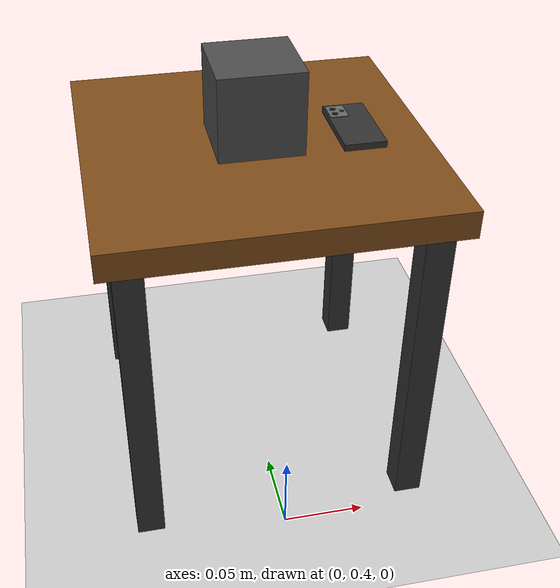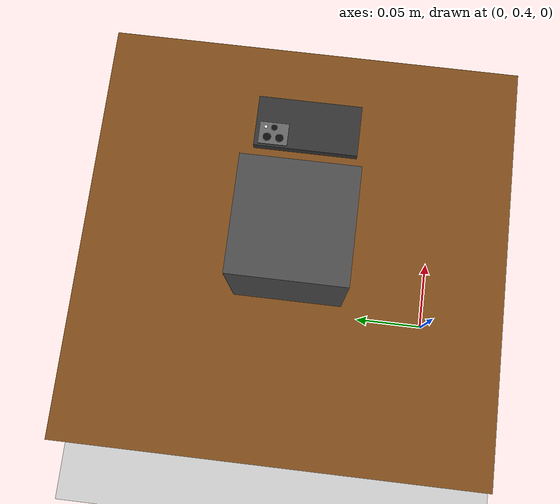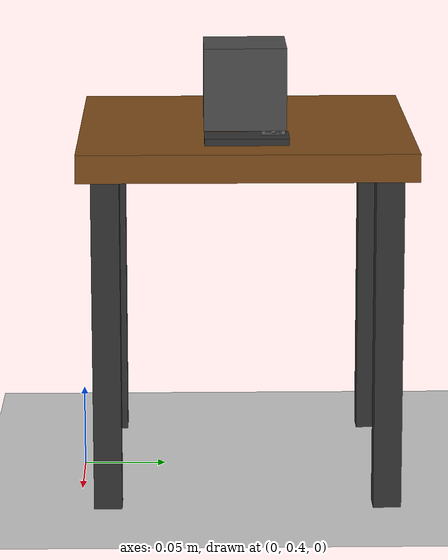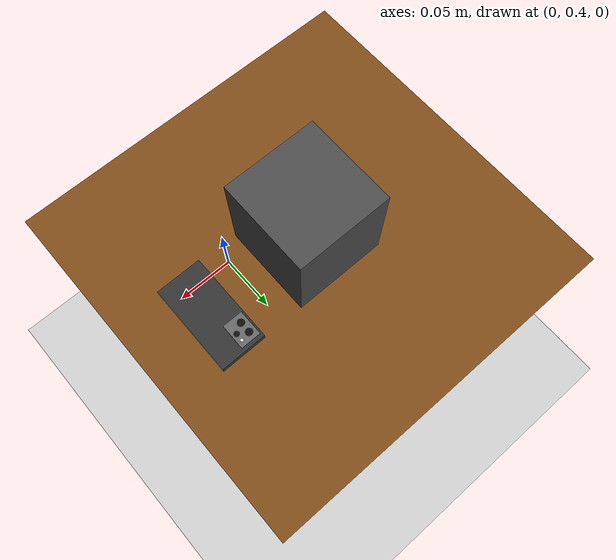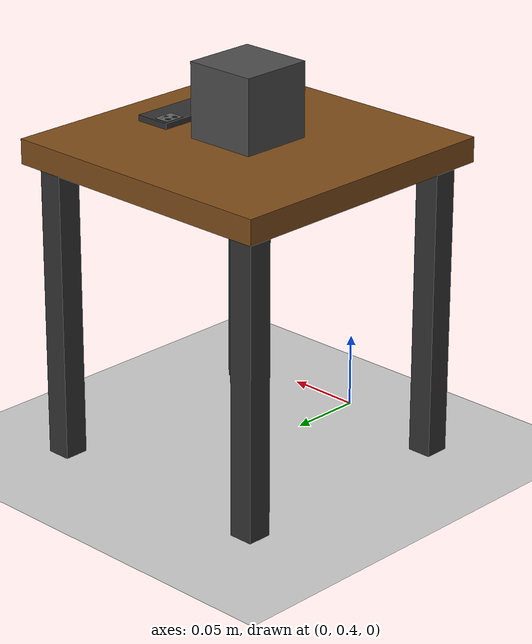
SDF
<?xml version="1.0" ?>
<sdf version="1.8">
    <world name='modifiedempty'>

        <plugin
            filename="libignition-gazebo-physics-system.so"
            name="ignition::gazebo::systems::Physics">
        </plugin>
        <plugin
            filename="libignition-gazebo-user-commands-system.so"
            name="ignition::gazebo::systems::UserCommands">
        </plugin>
        <plugin
            filename="libignition-gazebo-scene-broadcaster-system.so"
            name="ignition::gazebo::systems::SceneBroadcaster">
        </plugin>

        <scene>
            <ambient>0.4 0.4 0.4 1</ambient>
            <background>0.7 0.7 0.7 1</background>
            <sky>
                <clouds>
                    <speed>12</speed>
                    <direction>1.57</direction>
                    <humidity>0.5</humidity>
                </clouds>
                <ambient>0.6 0.8 1.0 1.0</ambient>
                <blue_horizon>0.8 0.9 1.0 1.0</blue_horizon>
                <blue_sky>0.5 0.7 0.9 1.0</blue_sky>
            </sky>
        </scene>

        <light type="directional" name="sun">
            <cast_shadows>true</cast_shadows>
            <pose>0 0 10 0 0 0</pose>
            <diffuse>0.8 0.8 0.8 1</diffuse>
            <specular>0.2 0.2 0.2 1</specular>
            <direction>-0.5 0.1 -0.9</direction>
        </light>

        <model name="ground_plane">
            <static>true</static>
            <link name="link">
                <collision name="collision">
                    <geometry>
                        <plane>
                            <normal>0 0 1</normal>
                            <size>100 100</size>
                        </plane>
                    </geometry>
                </collision>
                <visual name="visual">
                    <geometry>
                        <plane>
                            <normal>0 0 1</normal>
                            <size>100 100</size>
                        </plane>
                    </geometry>
                    <material>
                        <ambient>0.8 0.8 0.8 1</ambient>
                        <diffuse>0.8 0.8 0.8 1</diffuse>
                        <specular>0.8 0.8 0.8 1</specular>
                    </material>
                </visual>
            </link>
        </model>

        <model name="mini_table">
            <static>true</static>
            <pose>0 0.5 0 0 0 0</pose>
            <link name="link">
                <visual name="top_visual">
                    <pose>0 0 0.20835 0 0 0</pose>
                    <geometry>
                        <box>
                            <size>0.2 0.2 0.0167</size>
                        </box>
                    </geometry>
                    <material>
                        <ambient>0.5 0.3 0.1 1</ambient>
                        <diffuse>0.5 0.3 0.1 1</diffuse>
                    </material>
                </visual>
                <collision name="top_collision">
                    <pose>0 0 0.20835 0 0 0</pose>
                    <geometry>
                        <box>
                            <size>0.2 0.2 0.0167</size>
                        </box>
                    </geometry>
                </collision>

                <visual name="leg1_visual">
                    <pose>0.0833 0.0833 0.1 0 0 0</pose>
                    <geometry><box><size>0.0167 0.0167 0.2</size></box></geometry>
                    <material><ambient>0.2 0.2 0.2 1</ambient><diffuse>0.2 0.2 0.2 1</diffuse></material>
                </visual>
                <collision name="leg1_collision">
                    <pose>0.0833 0.0833 0.1 0 0 0</pose>
                    <geometry><box><size>0.0167 0.0167 0.2</size></box></geometry>
                </collision>

                <visual name="leg2_visual">
                    <pose>0.0833 -0.0833 0.1 0 0 0</pose>
                    <geometry><box><size>0.0167 0.0167 0.2</size></box></geometry>
                    <material><ambient>0.2 0.2 0.2 1</ambient><diffuse>0.2 0.2 0.2 1</diffuse></material>
                </visual>
                <collision name="leg2_collision">
                    <pose>0.0833 -0.0833 0.1 0 0 0</pose>
                    <geometry><box><size>0.0167 0.0167 0.2</size></box></geometry>
                </collision>

                <visual name="leg3_visual">
                    <pose>-0.0833 0.0833 0.1 0 0 0</pose>
                    <geometry><box><size>0.0167 0.0167 0.2</size></box></geometry>
                    <material><ambient>0.2 0.2 0.2 1</ambient><diffuse>0.2 0.2 0.2 1</diffuse></material>
                </visual>
                <collision name="leg3_collision">
                    <pose>-0.0833 0.0833 0.1 0 0 0</pose>
                    <geometry><box><size>0.0167 0.0167 0.2</size></box></geometry>
                </collision>

                <visual name="leg4_visual">
                    <pose>-0.0833 -0.0833 0.1 0 0 0</pose>
                    <geometry><box><size>0.0167 0.0167 0.2</size></box></geometry>
                    <material><ambient>0.2 0.2 0.2 1</ambient><diffuse>0.2 0.2 0.2 1</diffuse></material>
                </visual>
                <collision name="leg4_collision">
                    <pose>-0.0833 -0.0833 0.1 0 0 0</pose>
                    <geometry><box><size>0.0167 0.0167 0.2</size></box></geometry>
                </collision>
            </link>
        </model>

        <model name="blue_cube">
            <pose>0 0.5 0.2417 1.57 0 0</pose>
            <link name="link">
                <inertial>
                    <mass>0.1</mass>
                    <inertia>
                        <ixx>0.0000416</ixx> <ixy>0</ixy> <ixz>0</ixz>
                        <iyy>0.0000416</iyy> <iyz>0</iyz> <izz>0.0000416</izz>
                    </inertia>
                </inertial>
                <collision name="collision">
                    <geometry>
                        <box>
                            <size>0.05 0.05 0.05</size>
                        </box>
                    </geometry>
                </collision>
                <visual name="visual">
                    <geometry>
                        <box>
                            <size>0.05 0.05 0.05</size>
                        </box>
                    </geometry>
                    <material>
                        <ambient>0.3 0.3 0.3 1</ambient>
                        <diffuse>0.3 0.3 0.3 1</diffuse>
                        <specular>0.2 0.2 0.2 1</specular>
                    </material>
                </visual>
            </link>
        </model>

        <model name='mini_smartphone'>
            <pose>0.06 0.5 0.2167 0 0 0</pose>
            <static>false</static>
            <link name='body'>
                <inertial>
                    <mass>0.015</mass>
                    <inertia>
                        <ixx>0.000003</ixx> <ixy>0</ixy> <ixz>0</ixz>
                        <iyy>0.000001</iyy> <iyz>0</iyz> <izz>0.000004</izz>
                    </inertia>
                </inertial>

                <visual name='chassis_visual'>
                    <pose>0 0 0.002 0 0 0</pose>
                    <geometry>
                        <box><size>0.025 0.05 0.004</size></box>
                    </geometry>
                    <material>
                        <ambient>0.2 0.2 0.2 1</ambient>
                        <diffuse>0.2 0.2 0.2 1</diffuse>
                        <specular>0.5 0.5 0.5 1</specular>
                    </material>
                </visual>
                <collision name='chassis_collision'>
                    <pose>0 0 0.002 0 0 0</pose>
                    <geometry>
                        <box><size>0.025 0.05 0.004</size></box>
                    </geometry>
                </collision>

                <visual name='camera_bump'>
                    <pose>-0.006 0.016 0.0042 0 0 0</pose>
                    <geometry>
                        <box><size>0.011 0.014 0.0005</size></box>
                    </geometry>
                    <material>
                        <ambient>0.4 0.4 0.4 1</ambient>
                        <diffuse>0.4 0.4 0.4 1</diffuse>
                    </material>
                </visual>

                <visual name='lens_1'>
                    <pose>-0.008 0.019 0.0045 0 0 0</pose>
                    <geometry>
                        <cylinder><radius>0.002</radius><length>0.0002</length></cylinder>
                    </geometry>
                    <material>
                        <ambient>0.05 0.05 0.05 1</ambient>
                        <diffuse>0.05 0.05 0.05 1</diffuse>
                    </material>
                </visual>

                <visual name='lens_2'>
                    <pose>-0.008 0.013 0.0045 0 0 0</pose>
                    <geometry>
                        <cylinder><radius>0.002</radius><length>0.0002</length></cylinder>
                    </geometry>
                    <material>
                        <ambient>0.05 0.05 0.05 1</ambient>
                        <diffuse>0.05 0.05 0.05 1</diffuse>
                    </material>
                </visual>

                <visual name='lens_3'>
                    <pose>-0.003 0.016 0.0045 0 0 0</pose>
                    <geometry>
                        <cylinder><radius>0.0015</radius><length>0.0002</length></cylinder>
                    </geometry>
                    <material>
                        <ambient>0.05 0.05 0.05 1</ambient>
                        <diffuse>0.05 0.05 0.05 1</diffuse>
                    </material>
                </visual>

                <visual name='flash'>
                    <pose>-0.003 0.020 0.0045 0 0 0</pose>
                    <geometry>
                        <cylinder><radius>0.0008</radius><length>0.0002</length></cylinder>
                    </geometry>
                    <material>
                        <ambient>0.9 0.9 0.9 1</ambient>
                        <diffuse>0.9 0.9 0.9 1</diffuse>
                        <emissive>0.5 0.5 0.5 1</emissive>
                    </material>
                </visual>
            </link>
        </model>

    </world>
</sdf>
